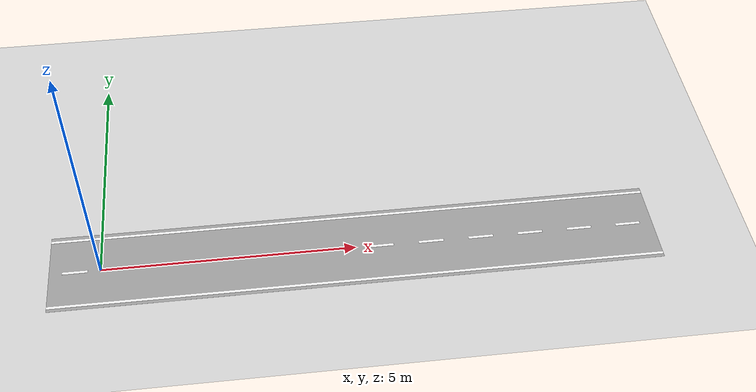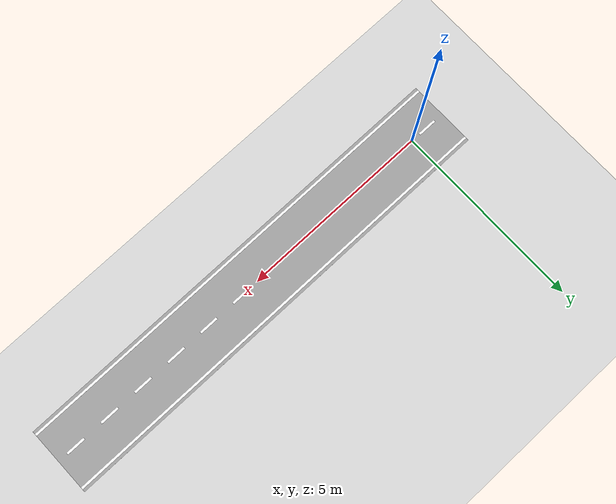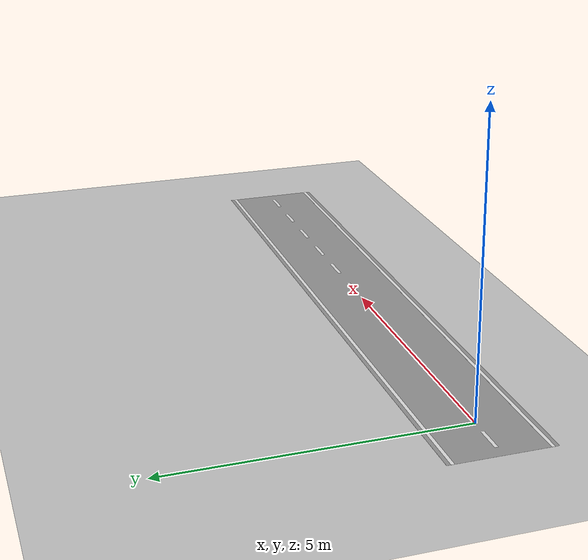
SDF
<?xml version="1.0"?>
<sdf version="1.6">
  <world name="road">
    <include><uri>model://sun</uri></include>
    <include><uri>model://ground_plane</uri></include>
    <model name="road"><static>true</static><pose>5 0 0.0005 0 0 0</pose>
      <link name="l"><visual name="v">
        <geometry><box><size>12 1.8 0.001</size></box></geometry>
        <material><script><uri>file://media/materials/scripts/gazebo.material</uri><name>Gazebo/Grey</name></script></material>
      </visual></link></model>
    <model name="edge_left"><static>true</static><pose>5 0.8 0.0015 0 0 0</pose>
      <link name="l"><visual name="v">
        <geometry><box><size>12 0.06 0.001</size></box></geometry>
        <material><script><uri>file://media/materials/scripts/gazebo.material</uri><name>Gazebo/White</name></script></material>
      </visual></link></model>
    <model name="edge_right"><static>true</static><pose>5 -0.8 0.0015 0 0 0</pose>
      <link name="l"><visual name="v">
        <geometry><box><size>12 0.06 0.001</size></box></geometry>
        <material><script><uri>file://media/materials/scripts/gazebo.material</uri><name>Gazebo/White</name></script></material>
      </visual></link></model>
    <model name="dash_0"><static>true</static><pose>-0.50 0 0.0015 0 0 0</pose>
      <link name="l"><visual name="v">
        <geometry><box><size>0.5 0.06 0.001</size></box></geometry>
        <material><script><uri>file://media/materials/scripts/gazebo.material</uri><name>Gazebo/White</name></script></material>
      </visual></link></model>
    <model name="dash_1"><static>true</static><pose>0.50 0 0.0015 0 0 0</pose>
      <link name="l"><visual name="v">
        <geometry><box><size>0.5 0.06 0.001</size></box></geometry>
        <material><script><uri>file://media/materials/scripts/gazebo.material</uri><name>Gazebo/White</name></script></material>
      </visual></link></model>
    <model name="dash_2"><static>true</static><pose>1.50 0 0.0015 0 0 0</pose>
      <link name="l"><visual name="v">
        <geometry><box><size>0.5 0.06 0.001</size></box></geometry>
        <material><script><uri>file://media/materials/scripts/gazebo.material</uri><name>Gazebo/White</name></script></material>
      </visual></link></model>
    <model name="dash_3"><static>true</static><pose>2.50 0 0.0015 0 0 0</pose>
      <link name="l"><visual name="v">
        <geometry><box><size>0.5 0.06 0.001</size></box></geometry>
        <material><script><uri>file://media/materials/scripts/gazebo.material</uri><name>Gazebo/White</name></script></material>
      </visual></link></model>
    <model name="dash_4"><static>true</static><pose>3.50 0 0.0015 0 0 0</pose>
      <link name="l"><visual name="v">
        <geometry><box><size>0.5 0.06 0.001</size></box></geometry>
        <material><script><uri>file://media/materials/scripts/gazebo.material</uri><name>Gazebo/White</name></script></material>
      </visual></link></model>
    <model name="dash_5"><static>true</static><pose>4.50 0 0.0015 0 0 0</pose>
      <link name="l"><visual name="v">
        <geometry><box><size>0.5 0.06 0.001</size></box></geometry>
        <material><script><uri>file://media/materials/scripts/gazebo.material</uri><name>Gazebo/White</name></script></material>
      </visual></link></model>
    <model name="dash_6"><static>true</static><pose>5.50 0 0.0015 0 0 0</pose>
      <link name="l"><visual name="v">
        <geometry><box><size>0.5 0.06 0.001</size></box></geometry>
        <material><script><uri>file://media/materials/scripts/gazebo.material</uri><name>Gazebo/White</name></script></material>
      </visual></link></model>
    <model name="dash_7"><static>true</static><pose>6.50 0 0.0015 0 0 0</pose>
      <link name="l"><visual name="v">
        <geometry><box><size>0.5 0.06 0.001</size></box></geometry>
        <material><script><uri>file://media/materials/scripts/gazebo.material</uri><name>Gazebo/White</name></script></material>
      </visual></link></model>
    <model name="dash_8"><static>true</static><pose>7.50 0 0.0015 0 0 0</pose>
      <link name="l"><visual name="v">
        <geometry><box><size>0.5 0.06 0.001</size></box></geometry>
        <material><script><uri>file://media/materials/scripts/gazebo.material</uri><name>Gazebo/White</name></script></material>
      </visual></link></model>
    <model name="dash_9"><static>true</static><pose>8.50 0 0.0015 0 0 0</pose>
      <link name="l"><visual name="v">
        <geometry><box><size>0.5 0.06 0.001</size></box></geometry>
        <material><script><uri>file://media/materials/scripts/gazebo.material</uri><name>Gazebo/White</name></script></material>
      </visual></link></model>
    <model name="dash_10"><static>true</static><pose>9.50 0 0.0015 0 0 0</pose>
      <link name="l"><visual name="v">
        <geometry><box><size>0.5 0.06 0.001</size></box></geometry>
        <material><script><uri>file://media/materials/scripts/gazebo.material</uri><name>Gazebo/White</name></script></material>
      </visual></link></model>
    <model name="dash_11"><static>true</static><pose>10.50 0 0.0015 0 0 0</pose>
      <link name="l"><visual name="v">
        <geometry><box><size>0.5 0.06 0.001</size></box></geometry>
        <material><script><uri>file://media/materials/scripts/gazebo.material</uri><name>Gazebo/White</name></script></material>
      </visual></link></model>
  </world>
</sdf>
